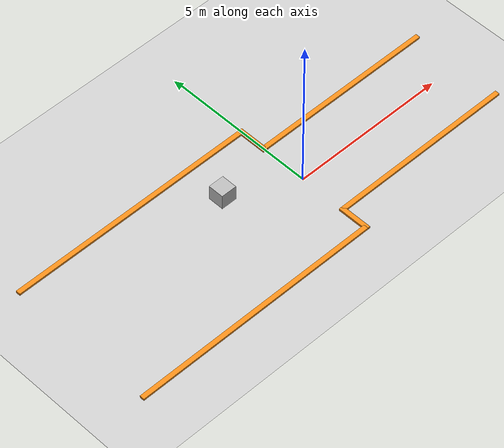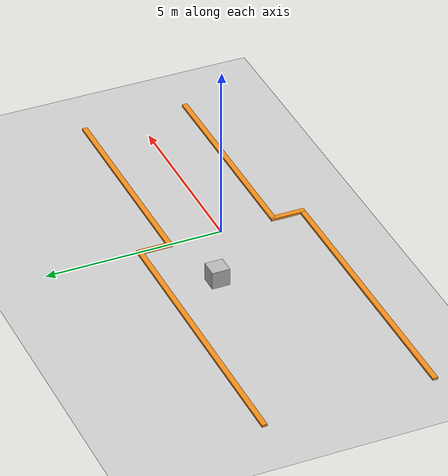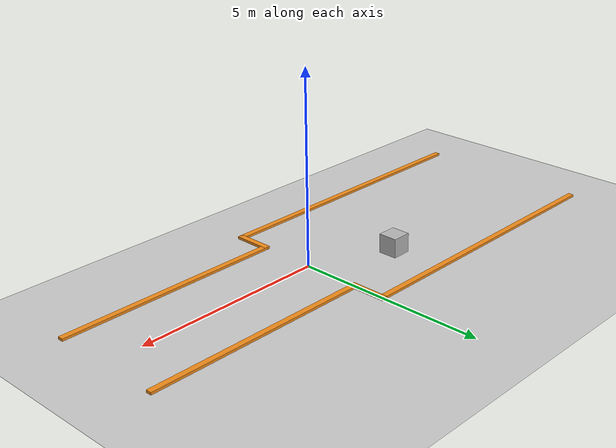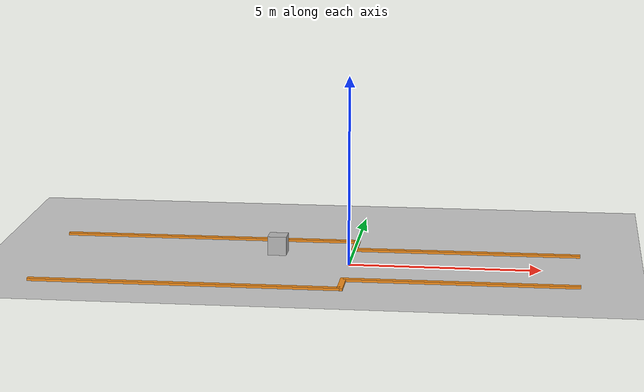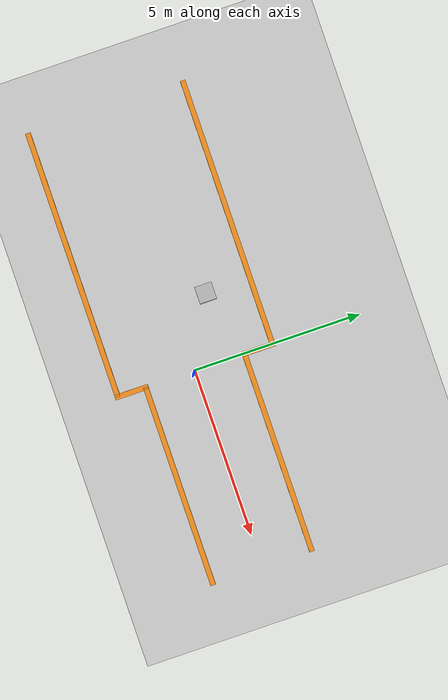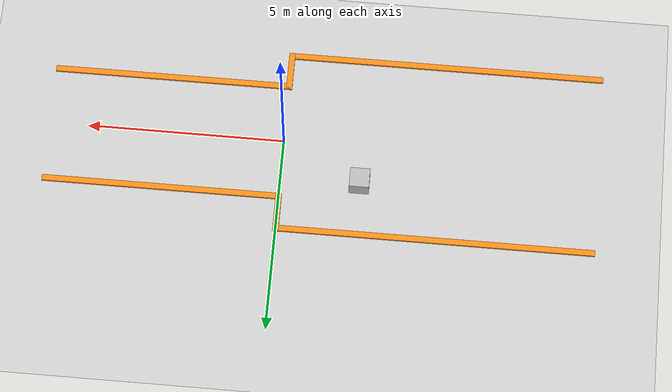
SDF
<sdf version="1.4">
  <world name="default">

    <scene>
      <ambient>0.4 0.4 0.4 1</ambient>
      <background>0.7 0.7 0.7 1</background>
      <shadows>true</shadows>
    </scene>

    <model name='room_test'>
      <pose>0 0 0 0 -0 0</pose>
      <link name='Wall_1'>
        <collision name='Wall_1_Collision'>
          <geometry>
            <box>
              <size>6 0.15 0.1</size>
            </box>
          </geometry>
          <pose>3 1.5 0 0 -0 0</pose>
          <max_contacts>10</max_contacts>
          <surface>
            <contact>
              <ode/>
            </contact>
            <bounce/>
            <friction>
              <torsional>
                <ode/>
              </torsional>
              <ode/>
            </friction>
          </surface>
        </collision>
        <visual name='Wall_1_Visual'>
          <pose>3 1.5 0 0 -0 0</pose>
          <geometry>
            <box>
              <size>6 0.15 0.1</size>
            </box>
          </geometry>
          <material>
            <script>
              <uri>file://media/materials/scripts/gazebo.material</uri>
              <name>Gazebo/Orange</name>
            </script>
            <ambient>1 1 1 1</ambient>
          </material>
          <meta>
            <layer>0</layer>
          </meta>
        </visual>
        <pose>0 0 0 0 -0 0</pose>
        <self_collide>0</self_collide>
        <enable_wind>0</enable_wind>
        <kinematic>0</kinematic>
      </link>
      <link name='Wall_2'>
        <collision name='Wall_2_Collision'>
          <geometry>
            <box>
              <size>6 0.15 0.1</size>
            </box>
          </geometry>
          <pose>3 -1.5 0 0 -0 0</pose>
          <max_contacts>10</max_contacts>
          <surface>
            <contact>
              <ode/>
            </contact>
            <bounce/>
            <friction>
              <torsional>
                <ode/>
              </torsional>
              <ode/>
            </friction>
          </surface>
        </collision>
        <visual name='Wall_2_Visual'>
          <pose>3 -1.5 0 0 -0 0</pose>
          <geometry>
            <box>
              <size>6 0.15 0.1</size>
            </box>
          </geometry>
          <material>
            <script>
              <uri>file://media/materials/scripts/gazebo.material</uri>
              <name>Gazebo/Orange</name>
            </script>
            <ambient>1 1 1 1</ambient>
          </material>
          <meta>
            <layer>0</layer>
          </meta>
        </visual>
        <pose>0 0 0 0 -0 0</pose>
        <self_collide>0</self_collide>
        <enable_wind>0</enable_wind>
        <kinematic>0</kinematic>
      </link>
      <link name='Wall_3'>
        <collision name='Wall_3_Collision'>
          <geometry>
            <box>
              <size>1 0.15 0.1</size>
            </box>
          </geometry>
          <pose>0 1.925 0 0 -0 1.57</pose>
          <max_contacts>10</max_contacts>
          <surface>
            <contact>
              <ode/>
            </contact>
            <bounce/>
            <friction>
              <torsional>
                <ode/>
              </torsional>
              <ode/>
            </friction>
          </surface>
        </collision>
        <visual name='Wall_3_Visual'>
          <pose>0 1.925 0 0 -0 1.57</pose>
          <geometry>
            <box>
              <size>1 0.15 0.1</size>
            </box>
          </geometry>
          <material>
            <script>
              <uri>file://media/materials/scripts/gazebo.material</uri>
              <name>Gazebo/Orange</name>
            </script>
            <ambient>1 1 1 1</ambient>
          </material>
          <meta>
            <layer>0</layer>
          </meta>
        </visual>
        <pose>0 0 0 0 -0 0</pose>
        <self_collide>0</self_collide>
        <enable_wind>0</enable_wind>
        <kinematic>0</kinematic>
      </link>

     <link name='Wall_4'>
        <collision name='Wall_4_Collision'>
          <geometry>
            <box>
              <size>1 0.15 0.1</size>
            </box>
          </geometry>
          <pose>0 -1.925 0 0 -0 1.57</pose>
          <max_contacts>10</max_contacts>
          <surface>
            <contact>
              <ode/>
            </contact>
            <bounce/>
            <friction>
              <torsional>
                <ode/>
              </torsional>
              <ode/>
            </friction>
          </surface>
        </collision>
        <visual name='Wall_4_Visual'>
          <pose>0 -1.925 0 0 -0 1.57</pose>
          <geometry>
            <box>
              <size>1 0.15 0.1</size>
            </box>
          </geometry>
          <material>
            <script>
              <uri>file://media/materials/scripts/gazebo.material</uri>
              <name>Gazebo/Orange</name>
            </script>
            <ambient>1 1 1 1</ambient>
          </material>
          <meta>
            <layer>0</layer>
          </meta>
        </visual>
        <pose>0 0 0 0 -0 0</pose>
        <self_collide>0</self_collide>
        <enable_wind>0</enable_wind>
        <kinematic>0</kinematic>
      </link>

     <link name='Wall_5'>
        <collision name='Wall_5_Collision'>
          <geometry>
            <box>
              <size>8 0.15 0.1</size>
            </box>
          </geometry>
          <pose>-4 -2.35 0 0 -0 0</pose>
          <max_contacts>10</max_contacts>
          <surface>
            <contact>
              <ode/>
            </contact>
            <bounce/>
            <friction>
              <torsional>
                <ode/>
              </torsional>
              <ode/>
            </friction>
          </surface>
        </collision>
        <visual name='Wall_5_Visual'>
          <pose>-4 -2.35 0 0 -0 0</pose>
          <geometry>
            <box>
              <size>8 0.15 0.1</size>
            </box>
          </geometry>
          <material>
            <script>
              <uri>file://media/materials/scripts/gazebo.material</uri>
              <name>Gazebo/Orange</name>
            </script>
            <ambient>1 1 1 1</ambient>
          </material>
          <meta>
            <layer>0</layer>
          </meta>
        </visual>
        <pose>0 0 0 0 -0 0</pose>
        <self_collide>0</self_collide>
        <enable_wind>0</enable_wind>
        <kinematic>0</kinematic>
      </link>

     <link name='Wall_6'>
        <collision name='Wall_6_Collision'>
          <geometry>
            <box>
              <size>8 0.15 0.1</size>
            </box>
          </geometry>
          <pose>-4 2.35 0 0 -0 0</pose>
          <max_contacts>10</max_contacts>
          <surface>
            <contact>
              <ode/>
            </contact>
            <bounce/>
            <friction>
              <torsional>
                <ode/>
              </torsional>
              <ode/>
            </friction>
          </surface>
        </collision>
        <visual name='Wall_6_Visual'>
          <pose>-4 2.35 0 0 -0 0</pose>
          <geometry>
            <box>
              <size>8 0.15 0.1</size>
            </box>
          </geometry>
          <material>
            <script>
              <uri>file://media/materials/scripts/gazebo.material</uri>
              <name>Gazebo/Orange</name>
            </script>
            <ambient>1 1 1 1</ambient>
          </material>
          <meta>
            <layer>0</layer>
          </meta>
        </visual>
        <pose>0 0 0 0 -0 0</pose>
        <self_collide>0</self_collide>
        <enable_wind>0</enable_wind>
        <kinematic>0</kinematic>
      </link>

      <static>1</static>
    </model>

    <model name="SJTU">
      <pose>-2.0 1.0 0.25 0 0 1.57</pose>
      <static>true</static>
      <link name="link">
        <collision name="collision">
          <geometry>
          <box>
            <size>0.5 0.5 0.5</size>
          </box>
          </geometry>
        </collision>
        <visual name="visual">
          <geometry>
          <box>
            <size>0.5 0.5 0.5</size>
          </box>
          </geometry>
          <material>
            <script>
              <uri>model://SJTU/materials/scripts</uri>
              <uri>model://SJTU/materials/textures</uri>
              <name>Number/One</name>
            </script>
          </material>
        </visual>
      </link>
    </model>

    <!-- A global light source -->
    <include>
      <uri>model://sun</uri>
    </include>

    <!-- A ground plane -->
    <include>
      <uri>model://ground_plane</uri>
    </include>

    <physics type="ode">
      <real_time_update_rate>1000.0</real_time_update_rate>
      <max_step_size>0.001</max_step_size>
      <real_time_factor>1</real_time_factor>
      <ode>
        <solver>
          <type>quick</type>
          <iters>150</iters>
          <precon_iters>0</precon_iters>
          <sor>1.400000</sor>
          <use_dynamic_moi_rescaling>1</use_dynamic_moi_rescaling>
        </solver>
        <constraints>
          <cfm>0.00001</cfm>
          <erp>0.2</erp>
          <contact_max_correcting_vel>2000.000000</contact_max_correcting_vel>
          <contact_surface_layer>0.01000</contact_surface_layer>
        </constraints>
      </ode>
    </physics>
  </world>

</sdf>
